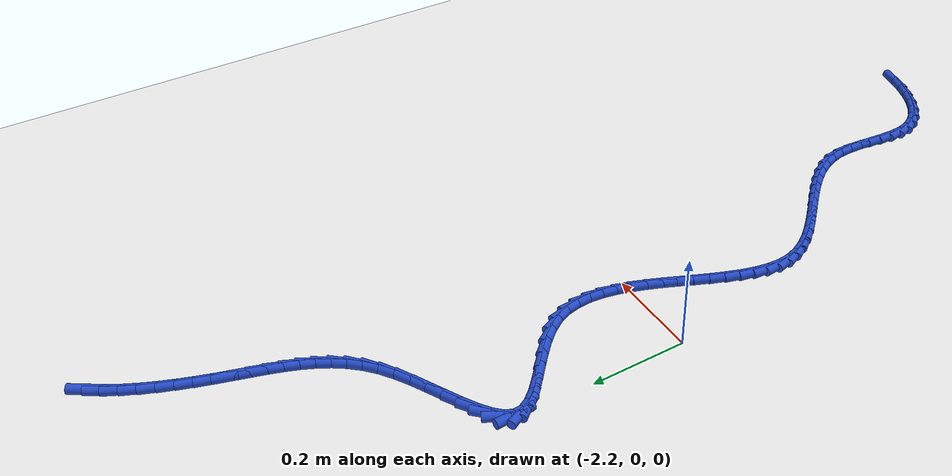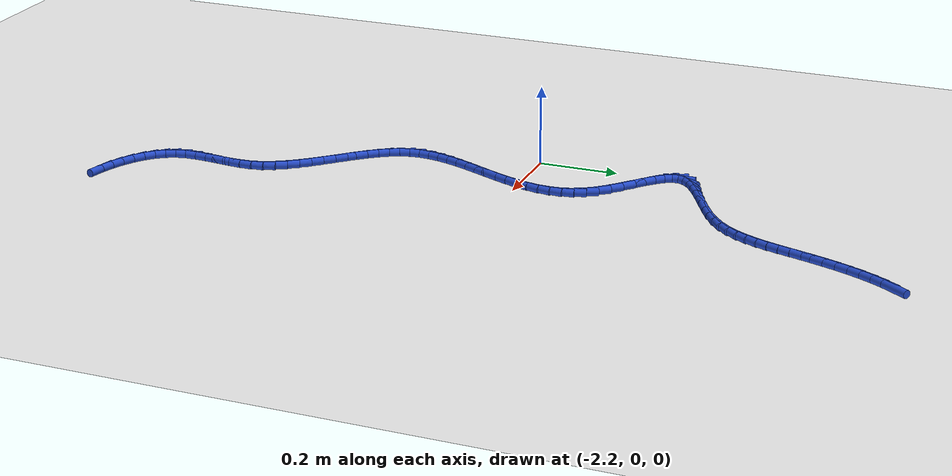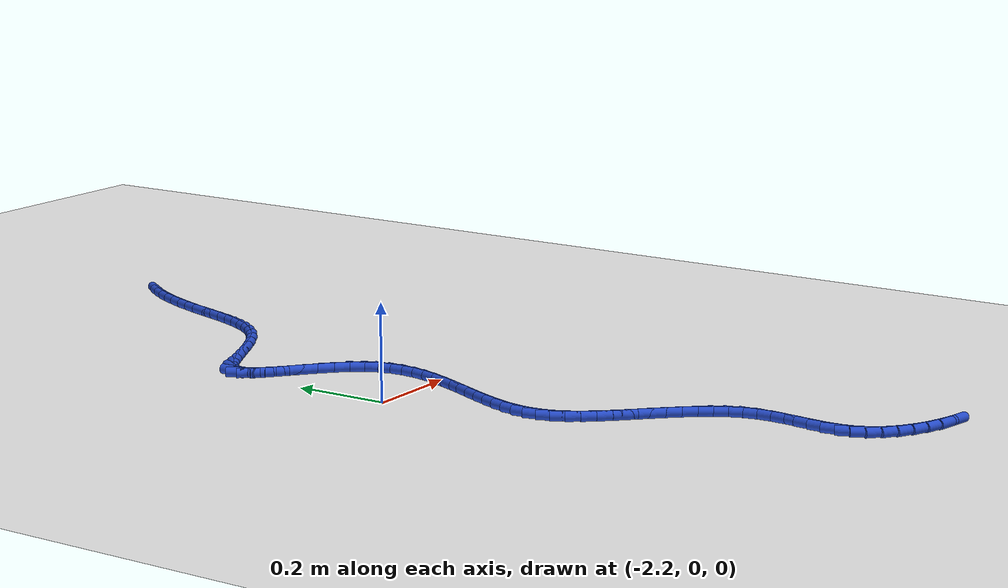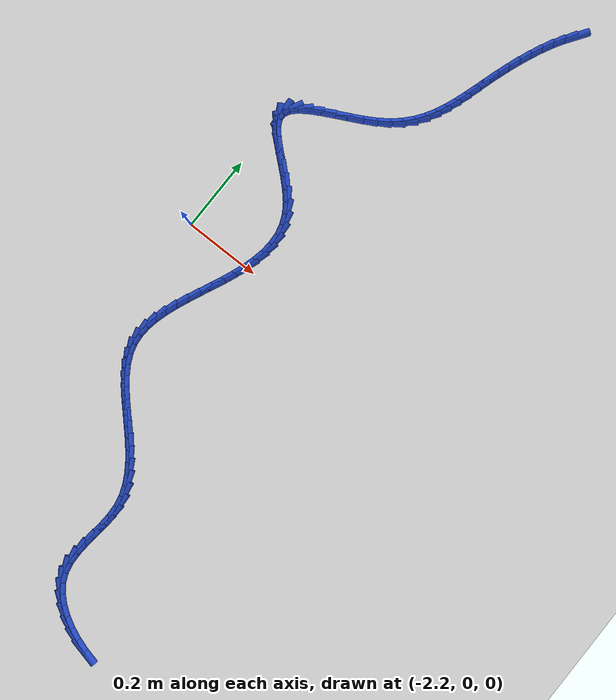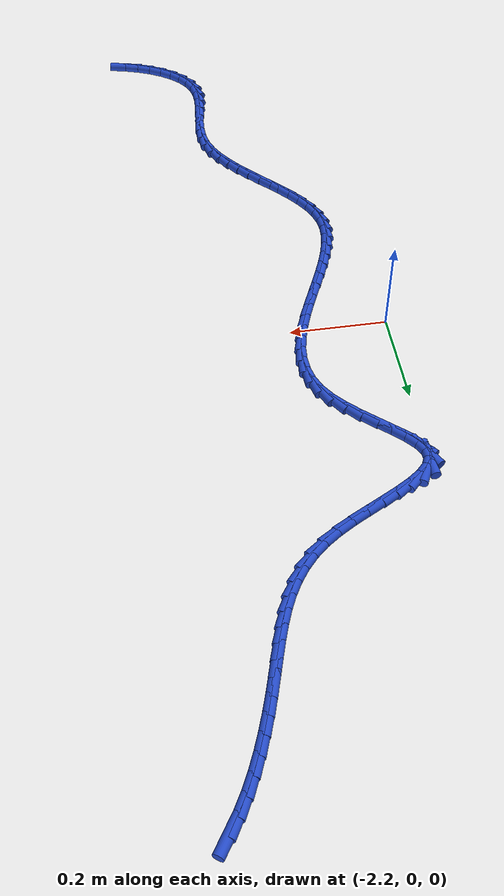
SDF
<sdf version="1.6">
 <world name="default">
  <model name="ground_plane">
   <static>1</static>
   <link name="link">
    <collision name="collision">
     <geometry><plane><normal>0 0 1</normal><size>100 100</size></plane></geometry>
     <surface><friction><ode><mu>100</mu><mu2>50</mu2></ode></friction></surface>
    </collision>
    <visual name="visual">
     <cast_shadows>0</cast_shadows>
     <geometry><plane><normal>0 0 1</normal><size>100 100</size></plane></geometry>
     <material>
      <script><uri>file://media/materials/scripts/gazebo.material</uri><name>Gazebo/WhiteGlow</name></script>
     </material>
    </visual>
   </link>
  </model>
  <model name="line">
   <link name="link_81">
    <pose>-1.7413648778442665 0.9724690442778641 0.01 0 1.57 0.9735401017300095</pose>
    <collision name="collision">
     <geometry><cylinder><radius>0.01</radius><length>0.08</length></cylinder></geometry>
    </collision>
    <visual name="visual">
     <material>
      <script><name>Gazebo/Blue</name><uri>file://media/materials/scripts/gazebo.material</uri></script>
     </material>
     <geometry><cylinder><radius>0.01</radius><length>0.08</length></cylinder></geometry>
    </visual>
   </link>
   <link name="link_82">
    <pose>-1.7582188728721633 0.9476879981299821 0.01 0 1.57 1.0437654718651337</pose>
    <collision name="collision">
     <geometry><cylinder><radius>0.01</radius><length>0.08</length></cylinder></geometry>
    </collision>
    <visual name="visual">
     <material>
      <script><name>Gazebo/Blue</name><uri>file://media/materials/scripts/gazebo.material</uri></script>
     </material>
     <geometry><cylinder><radius>0.01</radius><length>0.08</length></cylinder></geometry>
    </visual>
   </link>
   <link name="link_83">
    <pose>-1.7737831296674653 0.9209423237945145 0.01 0 1.57 1.1015954053656942</pose>
    <collision name="collision">
     <geometry><cylinder><radius>0.01</radius><length>0.08</length></cylinder></geometry>
    </collision>
    <visual name="visual">
     <material>
      <script><name>Gazebo/Blue</name><uri>file://media/materials/scripts/gazebo.material</uri></script>
     </material>
     <geometry><cylinder><radius>0.01</radius><length>0.08</length></cylinder></geometry>
    </visual>
   </link>
   <link name="link_84">
    <pose>-1.7881347236610885 0.8926332569297517 0.01 0 1.57 1.1492424028519195</pose>
    <collision name="collision">
     <geometry><cylinder><radius>0.01</radius><length>0.08</length></cylinder></geometry>
    </collision>
    <visual name="visual">
     <material>
      <script><name>Gazebo/Blue</name><uri>file://media/materials/scripts/gazebo.material</uri></script>
     </material>
     <geometry><cylinder><radius>0.01</radius><length>0.08</length></cylinder></geometry>
    </visual>
   </link>
   <link name="link_85">
    <pose>-1.8013507302839495 0.8631620331939845 0.01 0 1.57 1.188448195372894</pose>
    <collision name="collision">
     <geometry><cylinder><radius>0.01</radius><length>0.08</length></cylinder></geometry>
    </collision>
    <visual name="visual">
     <material>
      <script><name>Gazebo/Blue</name><uri>file://media/materials/scripts/gazebo.material</uri></script>
     </material>
     <geometry><cylinder><radius>0.01</radius><length>0.08</length></cylinder></geometry>
    </visual>
   </link>
   <link name="link_86">
    <pose>-1.8135082249669647 0.8329298882455042 0.01 0 1.57 1.220531891883308</pose>
    <collision name="collision">
     <geometry><cylinder><radius>0.01</radius><length>0.08</length></cylinder></geometry>
    </collision>
    <visual name="visual">
     <material>
      <script><name>Gazebo/Blue</name><uri>file://media/materials/scripts/gazebo.material</uri></script>
     </material>
     <geometry><cylinder><radius>0.01</radius><length>0.08</length></cylinder></geometry>
    </visual>
   </link>
   <link name="link_87">
    <pose>-1.8246842831410504 0.8023380577426016 0.01 0 1.57 1.2464476199409533</pose>
    <collision name="collision">
     <geometry><cylinder><radius>0.01</radius><length>0.08</length></cylinder></geometry>
    </collision>
    <visual name="visual">
     <material>
      <script><name>Gazebo/Blue</name><uri>file://media/materials/scripts/gazebo.material</uri></script>
     </material>
     <geometry><cylinder><radius>0.01</radius><length>0.08</length></cylinder></geometry>
    </visual>
   </link>
   <link name="link_88">
    <pose>-1.834955980237122 0.7717877773435671 0.01 0 1.57 1.266473317768896</pose>
    <collision name="collision">
     <geometry><cylinder><radius>0.01</radius><length>0.08</length></cylinder></geometry>
    </collision>
    <visual name="visual">
     <material>
      <script><name>Gazebo/Blue</name><uri>file://media/materials/scripts/gazebo.material</uri></script>
     </material>
     <geometry><cylinder><radius>0.01</radius><length>0.08</length></cylinder></geometry>
    </visual>
   </link>
   <link name="link_89">
    <pose>-1.844415412401863 0.7416698029418667 0.01 0 1.57 1.275091271883186</pose>
    <collision name="collision">
     <geometry><cylinder><radius>0.01</radius><length>0.08</length></cylinder></geometry>
    </collision>
    <visual name="visual">
     <material>
      <script><name>Gazebo/Blue</name><uri>file://media/materials/scripts/gazebo.material</uri></script>
     </material>
     <geometry><cylinder><radius>0.01</radius><length>0.08</length></cylinder></geometry>
    </visual>
   </link>
   <link name="link_90">
    <pose>-1.8533896562132788 0.7122109475338972 0.01 0 1.57 1.2668723736536172</pose>
    <collision name="collision">
     <geometry><cylinder><radius>0.01</radius><length>0.08</length></cylinder></geometry>
    </collision>
    <visual name="visual">
     <material>
      <script><name>Gazebo/Blue</name><uri>file://media/materials/scripts/gazebo.material</uri></script>
     </material>
     <geometry><cylinder><radius>0.01</radius><length>0.08</length></cylinder></geometry>
    </visual>
   </link>
   <link name="link_91">
    <pose>-1.862392053673922 0.6835080690676586 0.01 0 1.57 1.2405247901557017</pose>
    <collision name="collision">
     <geometry><cylinder><radius>0.01</radius><length>0.08</length></cylinder></geometry>
    </collision>
    <visual name="visual">
     <material>
      <script><name>Gazebo/Blue</name><uri>file://media/materials/scripts/gazebo.material</uri></script>
     </material>
     <geometry><cylinder><radius>0.01</radius><length>0.08</length></cylinder></geometry>
    </visual>
   </link>
   <link name="link_92">
    <pose>-1.8719410593467396 0.6556544585219484 0.01 0 1.57 1.1951155937575777</pose>
    <collision name="collision">
     <geometry><cylinder><radius>0.01</radius><length>0.08</length></cylinder></geometry>
    </collision>
    <visual name="visual">
     <material>
      <script><name>Gazebo/Blue</name><uri>file://media/materials/scripts/gazebo.material</uri></script>
     </material>
     <geometry><cylinder><radius>0.01</radius><length>0.08</length></cylinder></geometry>
    </visual>
   </link>
   <link name="link_93">
    <pose>-1.882555127794678 0.6287434068755635 0.01 0 1.57 1.1302888670565243</pose>
    <collision name="collision">
     <geometry><cylinder><radius>0.01</radius><length>0.08</length></cylinder></geometry>
    </collision>
    <visual name="visual">
     <material>
      <script><name>Gazebo/Blue</name><uri>file://media/materials/scripts/gazebo.material</uri></script>
     </material>
     <geometry><cylinder><radius>0.01</radius><length>0.08</length></cylinder></geometry>
    </visual>
   </link>
   <link name="link_94">
    <pose>-1.8947527135806819 0.6028682051073022 0.01 0 1.57 1.0468214288378574</pose>
    <collision name="collision">
     <geometry><cylinder><radius>0.01</radius><length>0.08</length></cylinder></geometry>
    </collision>
    <visual name="visual">
     <material>
      <script><name>Gazebo/Blue</name><uri>file://media/materials/scripts/gazebo.material</uri></script>
     </material>
     <geometry><cylinder><radius>0.01</radius><length>0.08</length></cylinder></geometry>
    </visual>
   </link>
   <link name="link_95">
    <pose>-1.9090522712676967 0.578122144195961 0.01 0 1.57 0.9472501901280432</pose>
    <collision name="collision">
     <geometry><cylinder><radius>0.01</radius><length>0.08</length></cylinder></geometry>
    </collision>
    <visual name="visual">
     <material>
      <script><name>Gazebo/Blue</name><uri>file://media/materials/scripts/gazebo.material</uri></script>
     </material>
     <geometry><cylinder><radius>0.01</radius><length>0.08</length></cylinder></geometry>
    </visual>
   </link>
   <link name="link_96">
    <pose>-1.9259722554186691 0.554598515120337 0.01 0 1.57 0.8361991114989781</pose>
    <collision name="collision">
     <geometry><cylinder><radius>0.01</radius><length>0.08</length></cylinder></geometry>
    </collision>
    <visual name="visual">
     <material>
      <script><name>Gazebo/Blue</name><uri>file://media/materials/scripts/gazebo.material</uri></script>
     </material>
     <geometry><cylinder><radius>0.01</radius><length>0.08</length></cylinder></geometry>
    </visual>
   </link>
   <link name="link_97">
    <pose>-1.946031120596543 0.5323906088592283 0.01 0 1.57 0.7199564821478506</pose>
    <collision name="collision">
     <geometry><cylinder><radius>0.01</radius><length>0.08</length></cylinder></geometry>
    </collision>
    <visual name="visual">
     <material>
      <script><name>Gazebo/Blue</name><uri>file://media/materials/scripts/gazebo.material</uri></script>
     </material>
     <geometry><cylinder><radius>0.01</radius><length>0.08</length></cylinder></geometry>
    </visual>
   </link>
   <link name="link_98">
    <pose>-1.9697473213642658 0.5115917163914319 0.01 0 1.57 0.6095641095739491</pose>
    <collision name="collision">
     <geometry><cylinder><radius>0.01</radius><length>0.08</length></cylinder></geometry>
    </collision>
    <visual name="visual">
     <material>
      <script><name>Gazebo/Blue</name><uri>file://media/materials/scripts/gazebo.material</uri></script>
     </material>
     <geometry><cylinder><radius>0.01</radius><length>0.08</length></cylinder></geometry>
    </visual>
   </link>
   <link name="link_99">
    <pose>-1.9974341522326966 0.4922588262908631 0.01 0 1.57 0.5321907488285472</pose>
    <collision name="collision">
     <geometry><cylinder><radius>0.01</radius><length>0.08</length></cylinder></geometry>
    </collision>
    <visual name="visual">
     <material>
      <script><name>Gazebo/Blue</name><uri>file://media/materials/scripts/gazebo.material</uri></script>
     </material>
     <geometry><cylinder><radius>0.01</radius><length>0.08</length></cylinder></geometry>
    </visual>
   </link>
   <link name="link_100">
    <pose>-2.028077534799016 0.4742140528055076 0.01 0 1.57 0.4882718856241446</pose>
    <collision name="collision">
     <geometry><cylinder><radius>0.01</radius><length>0.08</length></cylinder></geometry>
    </collision>
    <visual name="visual">
     <material>
      <script><name>Gazebo/Blue</name><uri>file://media/materials/scripts/gazebo.material</uri></script>
     </material>
     <geometry><cylinder><radius>0.01</radius><length>0.08</length></cylinder></geometry>
    </visual>
   </link>
   <link name="link_101">
    <pose>-2.0601350880598472 0.457186028754046 0.01 0 1.57 0.47160583434097475</pose>
    <collision name="collision">
     <geometry><cylinder><radius>0.01</radius><length>0.08</length></cylinder></geometry>
    </collision>
    <visual name="visual">
     <material>
      <script><name>Gazebo/Blue</name><uri>file://media/materials/scripts/gazebo.material</uri></script>
     </material>
     <geometry><cylinder><radius>0.01</radius><length>0.08</length></cylinder></geometry>
    </visual>
   </link>
   <link name="link_102">
    <pose>-2.0920630750041136 0.4409031470139992 0.01 0 1.57 0.48151824926223213</pose>
    <collision name="collision">
     <geometry><cylinder><radius>0.01</radius><length>0.08</length></cylinder></geometry>
    </collision>
    <visual name="visual">
     <material>
      <script><name>Gazebo/Blue</name><uri>file://media/materials/scripts/gazebo.material</uri></script>
     </material>
     <geometry><cylinder><radius>0.01</radius><length>0.08</length></cylinder></geometry>
    </visual>
   </link>
   <link name="link_103">
    <pose>-2.1223177586207322 0.4250938004628877 0.01 0 1.57 0.5235218755019929</pose>
    <collision name="collision">
     <geometry><cylinder><radius>0.01</radius><length>0.08</length></cylinder></geometry>
    </collision>
    <visual name="visual">
     <material>
      <script><name>Gazebo/Blue</name><uri>file://media/materials/scripts/gazebo.material</uri></script>
     </material>
     <geometry><cylinder><radius>0.01</radius><length>0.08</length></cylinder></geometry>
    </visual>
   </link>
   <link name="link_104">
    <pose>-2.1493554018986263 0.4094863819782323 0.01 0 1.57 0.6132309005447796</pose>
    <collision name="collision">
     <geometry><cylinder><radius>0.01</radius><length>0.08</length></cylinder></geometry>
    </collision>
    <visual name="visual">
     <material>
      <script><name>Gazebo/Blue</name><uri>file://media/materials/scripts/gazebo.material</uri></script>
     </material>
     <geometry><cylinder><radius>0.01</radius><length>0.08</length></cylinder></geometry>
    </visual>
   </link>
   <link name="link_105">
    <pose>-2.171632267826714 0.3938092844375543 0.01 0 1.57 0.7868370837535097</pose>
    <collision name="collision">
     <geometry><cylinder><radius>0.01</radius><length>0.08</length></cylinder></geometry>
    </collision>
    <visual name="visual">
     <material>
      <script><name>Gazebo/Blue</name><uri>file://media/materials/scripts/gazebo.material</uri></script>
     </material>
     <geometry><cylinder><radius>0.01</radius><length>0.08</length></cylinder></geometry>
    </visual>
   </link>
   <link name="link_106">
    <pose>-2.187604619393915 0.3777909007183744 0.01 0 1.57 1.116404495952191</pose>
    <collision name="collision">
     <geometry><cylinder><radius>0.01</radius><length>0.08</length></cylinder></geometry>
    </collision>
    <visual name="visual">
     <material>
      <script><name>Gazebo/Blue</name><uri>file://media/materials/scripts/gazebo.material</uri></script>
     </material>
     <geometry><cylinder><radius>0.01</radius><length>0.08</length></cylinder></geometry>
    </visual>
   </link>
   <link name="link_107">
    <pose>-2.19572871958915 0.36115962369821325 0.01 0 1.57 -1.5045925306858858</pose>
    <collision name="collision">
     <geometry><cylinder><radius>0.01</radius><length>0.08</length></cylinder></geometry>
    </collision>
    <visual name="visual">
     <material>
      <script><name>Gazebo/Blue</name><uri>file://media/materials/scripts/gazebo.material</uri></script>
     </material>
     <geometry><cylinder><radius>0.01</radius><length>0.08</length></cylinder></geometry>
    </visual>
   </link>
   <link name="link_108">
    <pose>-2.194567954228563 0.3436520323365499 0.01 0 1.57 -1.0731165108908103</pose>
    <collision name="collision">
     <geometry><cylinder><radius>0.01</radius><length>0.08</length></cylinder></geometry>
    </collision>
    <visual name="visual">
     <material>
      <script><name>Gazebo/Blue</name><uri>file://media/materials/scripts/gazebo.material</uri></script>
     </material>
     <geometry><cylinder><radius>0.01</radius><length>0.08</length></cylinder></geometry>
    </visual>
   </link>
   <link name="link_109">
    <pose>-2.184512837118739 0.32514433054363817 0.01 0 1.57 -0.8533373140581546</pose>
    <collision name="collision">
     <geometry><cylinder><radius>0.01</radius><length>0.08</length></cylinder></geometry>
    </collision>
    <visual name="visual">
     <material>
      <script><name>Gazebo/Blue</name><uri>file://media/materials/scripts/gazebo.material</uri></script>
     </material>
     <geometry><cylinder><radius>0.01</radius><length>0.08</length></cylinder></geometry>
    </visual>
   </link>
   <link name="link_110">
    <pose>-2.167484721687301 0.3056297054995672 0.01 0 1.57 -0.7499846917802826</pose>
    <collision name="collision">
     <geometry><cylinder><radius>0.01</radius><length>0.08</length></cylinder></geometry>
    </collision>
    <visual name="visual">
     <material>
      <script><name>Gazebo/Blue</name><uri>file://media/materials/scripts/gazebo.material</uri></script>
     </material>
     <geometry><cylinder><radius>0.01</radius><length>0.08</length></cylinder></geometry>
    </visual>
   </link>
   <link name="link_111">
    <pose>-2.1454522444096114 0.2851049576470152 0.01 0 1.57 -0.7097987979756916</pose>
    <collision name="collision">
     <geometry><cylinder><radius>0.01</radius><length>0.08</length></cylinder></geometry>
    </collision>
    <visual name="visual">
     <material>
      <script><name>Gazebo/Blue</name><uri>file://media/materials/scripts/gazebo.material</uri></script>
     </material>
     <geometry><cylinder><radius>0.01</radius><length>0.08</length></cylinder></geometry>
    </visual>
   </link>
   <link name="link_112">
    <pose>-2.12038404176103 0.26356688742866 0.01 0 1.57 -0.7119893796815231</pose>
    <collision name="collision">
     <geometry><cylinder><radius>0.01</radius><length>0.08</length></cylinder></geometry>
    </collision>
    <visual name="visual">
     <material>
      <script><name>Gazebo/Blue</name><uri>file://media/materials/scripts/gazebo.material</uri></script>
     </material>
     <geometry><cylinder><radius>0.01</radius><length>0.08</length></cylinder></geometry>
    </visual>
   </link>
   <link name="link_113">
    <pose>-2.0942487502169205 0.2410122952871806 0.01 0 1.57 -0.7514121482337232</pose>
    <collision name="collision">
     <geometry><cylinder><radius>0.01</radius><length>0.08</length></cylinder></geometry>
    </collision>
    <visual name="visual">
     <material>
      <script><name>Gazebo/Blue</name><uri>file://media/materials/scripts/gazebo.material</uri></script>
     </material>
     <geometry><cylinder><radius>0.01</radius><length>0.08</length></cylinder></geometry>
    </visual>
   </link>
   <link name="link_114">
    <pose>-2.0690150062526436 0.217437981665255 0.01 0 1.57 -0.8329270130890529</pose>
    <collision name="collision">
     <geometry><cylinder><radius>0.01</radius><length>0.08</length></cylinder></geometry>
    </collision>
    <visual name="visual">
     <material>
      <script><name>Gazebo/Blue</name><uri>file://media/materials/scripts/gazebo.material</uri></script>
     </material>
     <geometry><cylinder><radius>0.01</radius><length>0.08</length></cylinder></geometry>
    </visual>
   </link>
   <link name="link_115">
    <pose>-2.0466514463435606 0.19284074700556098 0.01 0 1.57 -0.9705925250164414</pose>
    <collision name="collision">
     <geometry><cylinder><radius>0.01</radius><length>0.08</length></cylinder></geometry>
    </collision>
    <visual name="visual">
     <material>
      <script><name>Gazebo/Blue</name><uri>file://media/materials/scripts/gazebo.material</uri></script>
     </material>
     <geometry><cylinder><radius>0.01</radius><length>0.08</length></cylinder></geometry>
    </visual>
   </link>
   <link name="link_116">
    <pose>-2.029114297514588 0.1672179746685947 0.01 0 1.57 -1.1573862277796763</pose>
    <collision name="collision">
     <geometry><cylinder><radius>0.01</radius><length>0.08</length></cylinder></geometry>
    </collision>
    <visual name="visual">
     <material>
      <script><name>Gazebo/Blue</name><uri>file://media/materials/scripts/gazebo.material</uri></script>
     </material>
     <geometry><cylinder><radius>0.01</radius><length>0.08</length></cylinder></geometry>
    </visual>
   </link>
   <link name="link_117">
    <pose>-2.0174416813677327 0.14061017482463525 0.01 0 1.57 -1.345333680887727</pose>
    <collision name="collision">
     <geometry><cylinder><radius>0.01</radius><length>0.08</length></cylinder></geometry>
    </collision>
    <visual name="visual">
     <material>
      <script><name>Gazebo/Blue</name><uri>file://media/materials/scripts/gazebo.material</uri></script>
     </material>
     <geometry><cylinder><radius>0.01</radius><length>0.08</length></cylinder></geometry>
    </visual>
   </link>
   <link name="link_118">
    <pose>-2.0111387348195966 0.11312986760848369 0.01 0 1.57 -1.5151133318048375</pose>
    <collision name="collision">
     <geometry><cylinder><radius>0.01</radius><length>0.08</length></cylinder></geometry>
    </collision>
    <visual name="visual">
     <material>
      <script><name>Gazebo/Blue</name><uri>file://media/materials/scripts/gazebo.material</uri></script>
     </material>
     <geometry><cylinder><radius>0.01</radius><length>0.08</length></cylinder></geometry>
    </visual>
   </link>
   <link name="link_119">
    <pose>-2.0095649846507544 0.08489641300195801 0.01 0 1.57 1.4838937151429745</pose>
    <collision name="collision">
     <geometry><cylinder><radius>0.01</radius><length>0.08</length></cylinder></geometry>
    </collision>
    <visual name="visual">
     <material>
      <script><name>Gazebo/Blue</name><uri>file://media/materials/scripts/gazebo.material</uri></script>
     </material>
     <geometry><cylinder><radius>0.01</radius><length>0.08</length></cylinder></geometry>
    </visual>
   </link>
   <link name="link_120">
    <pose>-2.012079957641783 0.05602917098687762 0.01 0 1.57 1.3705588778639692</pose>
    <collision name="collision">
     <geometry><cylinder><radius>0.01</radius><length>0.08</length></cylinder></geometry>
    </collision>
    <visual name="visual">
     <material>
      <script><name>Gazebo/Blue</name><uri>file://media/materials/scripts/gazebo.material</uri></script>
     </material>
     <geometry><cylinder><radius>0.01</radius><length>0.08</length></cylinder></geometry>
    </visual>
   </link>
   <link name="link_121">
    <pose>-2.0180431805732586 0.026647501545060764 0.01 0 1.57 1.2843389114760986</pose>
    <collision name="collision">
     <geometry><cylinder><radius>0.01</radius><length>0.08</length></cylinder></geometry>
    </collision>
    <visual name="visual">
     <material>
      <script><name>Gazebo/Blue</name><uri>file://media/materials/scripts/gazebo.material</uri></script>
     </material>
     <geometry><cylinder><radius>0.01</radius><length>0.08</length></cylinder></geometry>
    </visual>
   </link>
   <link name="link_122">
    <pose>-2.026814180225757 -0.003129235341673882 0.01 0 1.57 1.2217273047179713</pose>
    <collision name="collision">
     <geometry><cylinder><radius>0.01</radius><length>0.08</length></cylinder></geometry>
    </collision>
    <visual name="visual">
     <material>
      <script><name>Gazebo/Blue</name><uri>file://media/materials/scripts/gazebo.material</uri></script>
     </material>
     <geometry><cylinder><radius>0.01</radius><length>0.08</length></cylinder></geometry>
    </visual>
   </link>
   <link name="link_123">
    <pose>-2.037752483379854 -0.03318167969150776 0.01 0 1.57 1.1794474030797955</pose>
    <collision name="collision">
     <geometry><cylinder><radius>0.01</radius><length>0.08</length></cylinder></geometry>
    </collision>
    <visual name="visual">
     <material>
      <script><name>Gazebo/Blue</name><uri>file://media/materials/scripts/gazebo.material</uri></script>
     </material>
     <geometry><cylinder><radius>0.01</radius><length>0.08</length></cylinder></geometry>
    </visual>
   </link>
   <link name="link_124">
    <pose>-2.0502176168161257 -0.06339047152262225 0.01 0 1.57 1.1550893677543241</pose>
    <collision name="collision">
     <geometry><cylinder><radius>0.01</radius><length>0.08</length></cylinder></geometry>
    </collision>
    <visual name="visual">
     <material>
      <script><name>Gazebo/Blue</name><uri>file://media/materials/scripts/gazebo.material</uri></script>
     </material>
     <geometry><cylinder><radius>0.01</radius><length>0.08</length></cylinder></geometry>
    </visual>
   </link>
   <link name="link_125">
    <pose>-2.0635691073151494 -0.09363625085319957 0.01 0 1.57 1.1472852949574426</pose>
    <collision name="collision">
     <geometry><cylinder><radius>0.01</radius><length>0.08</length></cylinder></geometry>
    </collision>
    <visual name="visual">
     <material>
      <script><name>Gazebo/Blue</name><uri>file://media/materials/scripts/gazebo.material</uri></script>
     </material>
     <geometry><cylinder><radius>0.01</radius><length>0.08</length></cylinder></geometry>
    </visual>
   </link>
   <link name="link_126">
    <pose>-2.0771664816574984 -0.12379965770141947 0.01 0 1.57 1.1557401723366894</pose>
    <collision name="collision">
     <geometry><cylinder><radius>0.01</radius><length>0.08</length></cylinder></geometry>
    </collision>
    <visual name="visual">
     <material>
      <script><name>Gazebo/Blue</name><uri>file://media/materials/scripts/gazebo.material</uri></script>
     </material>
     <geometry><cylinder><radius>0.01</radius><length>0.08</length></cylinder></geometry>
    </visual>
   </link>
   <link name="link_127">
    <pose>-2.0903692666237514 -0.1537613320854641 0.01 0 1.57 1.18126351794216</pose>
    <collision name="collision">
     <geometry><cylinder><radius>0.01</radius><length>0.08</length></cylinder></geometry>
    </collision>
    <visual name="visual">
     <material>
      <script><name>Gazebo/Blue</name><uri>file://media/materials/scripts/gazebo.material</uri></script>
     </material>
     <geometry><cylinder><radius>0.01</radius><length>0.08</length></cylinder></geometry>
    </visual>
   </link>
   <link name="link_128">
    <pose>-2.1025369889944834 -0.18340191402351486 0.01 0 1.57 1.2258429803396411</pose>
    <collision name="collision">
     <geometry><cylinder><radius>0.01</radius><length>0.08</length></cylinder></geometry>
    </collision>
    <visual name="visual">
     <material>
      <script><name>Gazebo/Blue</name><uri>file://media/materials/scripts/gazebo.material</uri></script>
     </material>
     <geometry><cylinder><radius>0.01</radius><length>0.08</length></cylinder></geometry>
    </visual>
   </link>
   <link name="link_129">
    <pose>-2.1130291755502704 -0.21260204353375323 0.01 0 1.57 1.2927152286470092</pose>
    <collision name="collision">
     <geometry><cylinder><radius>0.01</radius><length>0.08</length></cylinder></geometry>
    </collision>
    <visual name="visual">
     <material>
      <script><name>Gazebo/Blue</name><uri>file://media/materials/scripts/gazebo.material</uri></script>
     </material>
     <geometry><cylinder><radius>0.01</radius><length>0.08</length></cylinder></geometry>
    </visual>
   </link>
   <link name="link_130">
    <pose>-2.1212053530716886 -0.24124236063436047 0.01 0 1.57 1.3862437980046305</pose>
    <collision name="collision">
     <geometry><cylinder><radius>0.01</radius><length>0.08</length></cylinder></geometry>
    </collision>
    <visual name="visual">
     <material>
      <script><name>Gazebo/Blue</name><uri>file://media/materials/scripts/gazebo.material</uri></script>
     </material>
     <geometry><cylinder><radius>0.01</radius><length>0.08</length></cylinder></geometry>
    </visual>
   </link>
   <link name="link_131">
    <pose>-2.1264250483393146 -0.26920350534351806 0.01 0 1.57 1.5111255800222176</pose>
    <collision name="collision">
     <geometry><cylinder><radius>0.01</radius><length>0.08</length></cylinder></geometry>
    </collision>
    <visual name="visual">
     <material>
      <script><name>Gazebo/Blue</name><uri>file://media/materials/scripts/gazebo.material</uri></script>
     </material>
     <geometry><cylinder><radius>0.01</radius><length>0.08</length></cylinder></geometry>
    </visual>
   </link>
   <link name="link_132">
    <pose>-2.1280477881337236 -0.29636611767940807 0.01 0 1.57 -1.471496761668637</pose>
    <collision name="collision">
     <geometry><cylinder><radius>0.01</radius><length>0.08</length></cylinder></geometry>
    </collision>
    <visual name="visual">
     <material>
      <script><name>Gazebo/Blue</name><uri>file://media/materials/scripts/gazebo.material</uri></script>
     </material>
     <geometry><cylinder><radius>0.01</radius><length>0.08</length></cylinder></geometry>
    </visual>
   </link>
   <link name="link_133">
    <pose>-2.1254330992354915 -0.32261083766021037 0.01 0 1.57 -1.289051348700481</pose>
    <collision name="collision">
     <geometry><cylinder><radius>0.01</radius><length>0.08</length></cylinder></geometry>
    </collision>
    <visual name="visual">
     <material>
      <script><name>Gazebo/Blue</name><uri>file://media/materials/scripts/gazebo.material</uri></script>
     </material>
     <geometry><cylinder><radius>0.01</radius><length>0.08</length></cylinder></geometry>
    </visual>
   </link>
   <link name="link_134">
    <pose>-2.1181250928360855 -0.3478592197748191 0.01 0 1.57 -1.1282062555390802</pose>
    <collision name="collision">
     <geometry><cylinder><radius>0.01</radius><length>0.08</length></cylinder></geometry>
    </collision>
    <visual name="visual">
     <material>
      <script><name>Gazebo/Blue</name><uri>file://media/materials/scripts/gazebo.material</uri></script>
     </material>
     <geometry><cylinder><radius>0.01</radius><length>0.08</length></cylinder></geometry>
    </visual>
   </link>
   <link name="link_135">
    <pose>-2.106572968317277 -0.37223343786061536 0.01 0 1.57 -1.0041067027618908</pose>
    <collision name="collision">
     <geometry><cylinder><radius>0.01</radius><length>0.08</length></cylinder></geometry>
    </collision>
    <visual name="visual">
     <material>
      <script><name>Gazebo/Blue</name><uri>file://media/materials/scripts/gazebo.material</uri></script>
     </material>
     <geometry><cylinder><radius>0.01</radius><length>0.08</length></cylinder></geometry>
    </visual>
   </link>
   <link name="link_136">
    <pose>-2.0915028915036067 -0.3959170573717279 0.01 0 1.57 -0.914189530016766</pose>
    <collision name="collision">
     <geometry><cylinder><radius>0.01</radius><length>0.08</length></cylinder></geometry>
    </collision>
    <visual name="visual">
     <material>
      <script><name>Gazebo/Blue</name><uri>file://media/materials/scripts/gazebo.material</uri></script>
     </material>
     <geometry><cylinder><radius>0.01</radius><length>0.08</length></cylinder></geometry>
    </visual>
   </link>
   <link name="link_137">
    <pose>-2.0736410988921414 -0.41909365942736193 0.01 0 1.57 -0.8536850870196215</pose>
    <collision name="collision">
     <geometry><cylinder><radius>0.01</radius><length>0.08</length></cylinder></geometry>
    </collision>
    <visual name="visual">
     <material>
      <script><name>Gazebo/Blue</name><uri>file://media/materials/scripts/gazebo.material</uri></script>
     </material>
     <geometry><cylinder><radius>0.01</radius><length>0.08</length></cylinder></geometry>
    </visual>
   </link>
   <link name="link_138">
    <pose>-2.053713826979949 -0.44194682514672295 0.01 0 1.57 -0.8182831103132832</pose>
    <collision name="collision">
     <geometry><cylinder><radius>0.01</radius><length>0.08</length></cylinder></geometry>
    </collision>
    <visual name="visual">
     <material>
      <script><name>Gazebo/Blue</name><uri>file://media/materials/scripts/gazebo.material</uri></script>
     </material>
     <geometry><cylinder><radius>0.01</radius><length>0.08</length></cylinder></geometry>
    </visual>
   </link>
   <link name="link_139">
    <pose>-2.0324473122640967 -0.4646601356490166 0.01 0 1.57 -0.8050547500858454</pose>
    <collision name="collision">
     <geometry><cylinder><radius>0.01</radius><length>0.08</length></cylinder></geometry>
    </collision>
    <visual name="visual">
     <material>
      <script><name>Gazebo/Blue</name><uri>file://media/materials/scripts/gazebo.material</uri></script>
     </material>
     <geometry><cylinder><radius>0.01</radius><length>0.08</length></cylinder></geometry>
    </visual>
   </link>
   <link name="link_140">
    <pose>-2.01056779124165 -0.48741717205344837 0.01 0 1.57 -0.8126101112769081</pose>
    <collision name="collision">
     <geometry><cylinder><radius>0.01</radius><length>0.08</length></cylinder></geometry>
    </collision>
    <visual name="visual">
     <material>
      <script><name>Gazebo/Blue</name><uri>file://media/materials/scripts/gazebo.material</uri></script>
     </material>
     <geometry><cylinder><radius>0.01</radius><length>0.08</length></cylinder></geometry>
    </visual>
   </link>
   <link name="link_141">
    <pose>-1.9888015004096784 -0.5104015154792229 0.01 0 1.57 -0.8410332206935421</pose>
    <collision name="collision">
     <geometry><cylinder><radius>0.01</radius><length>0.08</length></cylinder></geometry>
    </collision>
    <visual name="visual">
     <material>
      <script><name>Gazebo/Blue</name><uri>file://media/materials/scripts/gazebo.material</uri></script>
     </material>
     <geometry><cylinder><radius>0.01</radius><length>0.08</length></cylinder></geometry>
    </visual>
   </link>
   <link name="link_142">
    <pose>-1.9678746762652468 -0.5337967470455458 0.01 0 1.57 -0.8917654839579682</pose>
    <collision name="collision">
     <geometry><cylinder><radius>0.01</radius><length>0.08</length></cylinder></geometry>
    </collision>
    <visual name="visual">
     <material>
      <script><name>Gazebo/Blue</name><uri>file://media/materials/scripts/gazebo.material</uri></script>
     </material>
     <geometry><cylinder><radius>0.01</radius><length>0.08</length></cylinder></geometry>
    </visual>
   </link>
   <link name="link_143">
    <pose>-1.948513555305424 -0.5577864478716228 0.01 0 1.57 -0.9673761280598518</pose>
    <collision name="collision">
     <geometry><cylinder><radius>0.01</radius><length>0.08</length></cylinder></geometry>
    </collision>
    <visual name="visual">
     <material>
      <script><name>Gazebo/Blue</name><uri>file://media/materials/scripts/gazebo.material</uri></script>
     </material>
     <geometry><cylinder><radius>0.01</radius><length>0.08</length></cylinder></geometry>
    </visual>
   </link>
   <link name="link_144">
    <pose>-1.9314443740272762 -0.5825541990766592 0.01 0 1.57 -1.0709466234884975</pose>
    <collision name="collision">
     <geometry><cylinder><radius>0.01</radius><length>0.08</length></cylinder></geometry>
    </collision>
    <visual name="visual">
     <material>
      <script><name>Gazebo/Blue</name><uri>file://media/materials/scripts/gazebo.material</uri></script>
     </material>
     <geometry><cylinder><radius>0.01</radius><length>0.08</length></cylinder></geometry>
    </visual>
   </link>
   <link name="link_145">
    <pose>-1.9173933689278702 -0.6082835817798604 0.01 0 1.57 -1.204588500375473</pose>
    <collision name="collision">
     <geometry><cylinder><radius>0.01</radius><length>0.08</length></cylinder></geometry>
    </collision>
    <visual name="visual">
     <material>
      <script><name>Gazebo/Blue</name><uri>file://media/materials/scripts/gazebo.material</uri></script>
     </material>
     <geometry><cylinder><radius>0.01</radius><length>0.08</length></cylinder></geometry>
    </visual>
   </link>
   <link name="link_146">
    <pose>-1.9070867765042738 -0.6351581771004315 0.01 0 1.57 -1.366334542022143</pose>
    <collision name="collision">
     <geometry><cylinder><radius>0.01</radius><length>0.08</length></cylinder></geometry>
    </collision>
    <visual name="visual">
     <material>
      <script><name>Gazebo/Blue</name><uri>file://media/materials/scripts/gazebo.material</uri></script>
     </material>
     <geometry><cylinder><radius>0.01</radius><length>0.08</length></cylinder></geometry>
    </visual>
   </link>
   <link name="link_147">
    <pose>-1.9012392889845557 -0.6633579481414099 0.01 0 1.57 -1.5211949681402401</pose>
    <collision name="collision">
     <geometry><cylinder><radius>0.01</radius><length>0.08</length></cylinder></geometry>
    </collision>
    <visual name="visual">
     <material>
      <script><name>Gazebo/Blue</name><uri>file://media/materials/scripts/gazebo.material</uri></script>
     </material>
     <geometry><cylinder><radius>0.01</radius><length>0.08</length></cylinder></geometry>
    </visual>
   </link>
   <link name="link_148">
    <pose>-1.8997769454428146 -0.6928156912199954 0.01 0 1.57 1.5190101407345944</pose>
    <collision name="collision">
     <geometry><cylinder><radius>0.01</radius><length>0.08</length></cylinder></geometry>
    </collision>
    <visual name="visual">
     <material>
      <script><name>Gazebo/Blue</name><uri>file://media/materials/scripts/gazebo.material</uri></script>
     </material>
     <geometry><cylinder><radius>0.01</radius><length>0.08</length></cylinder></geometry>
    </visual>
   </link>
   <link name="link_149">
    <pose>-1.9013447251285405 -0.7230627138142022 0.01 0 1.57 1.4687787547937843</pose>
    <collision name="collision">
     <geometry><cylinder><radius>0.01</radius><length>0.08</length></cylinder></geometry>
    </collision>
    <visual name="visual">
     <material>
      <script><name>Gazebo/Blue</name><uri>file://media/materials/scripts/gazebo.material</uri></script>
     </material>
     <geometry><cylinder><radius>0.01</radius><length>0.08</length></cylinder></geometry>
    </visual>
   </link>
   <link name="link_150">
    <pose>-1.9044702570492955 -0.7535935454065861 0.01 0 1.57 1.4652513260121216</pose>
    <collision name="collision">
     <geometry><cylinder><radius>0.01</radius><length>0.08</length></cylinder></geometry>
    </collision>
    <visual name="visual">
     <material>
      <script><name>Gazebo/Blue</name><uri>file://media/materials/scripts/gazebo.material</uri></script>
     </material>
     <geometry><cylinder><radius>0.01</radius><length>0.08</length></cylinder></geometry>
    </visual>
   </link>
   <link name="link_151">
    <pose>-1.9076811702126435 -0.7839027154797035 0.01 0 1.57 1.5092178296343122</pose>
    <collision name="collision">
     <geometry><cylinder><radius>0.01</radius><length>0.08</length></cylinder></geometry>
    </collision>
    <visual name="visual">
     <material>
      <script><name>Gazebo/Blue</name><uri>file://media/materials/scripts/gazebo.material</uri></script>
     </material>
     <geometry><cylinder><radius>0.01</radius><length>0.08</length></cylinder></geometry>
    </visual>
   </link>
   <link name="link_152">
    <pose>-1.909505093626146 -0.8134847535161104 0.01 0 1.57 -1.5342884651133424</pose>
    <collision name="collision">
     <geometry><cylinder><radius>0.01</radius><length>0.08</length></cylinder></geometry>
    </collision>
    <visual name="visual">
     <material>
      <script><name>Gazebo/Blue</name><uri>file://media/materials/scripts/gazebo.material</uri></script>
     </material>
     <geometry><cylinder><radius>0.01</radius><length>0.08</length></cylinder></geometry>
    </visual>
   </link>
   <link name="link_153">
    <pose>-1.9084696562973678 -0.841834188998363 0.01 0 1.57 -1.371779063044904</pose>
    <collision name="collision">
     <geometry><cylinder><radius>0.01</radius><length>0.08</length></cylinder></geometry>
    </collision>
    <visual name="visual">
     <material>
      <script><name>Gazebo/Blue</name><uri>file://media/materials/scripts/gazebo.material</uri></script>
     </material>
     <geometry><cylinder><radius>0.01</radius><length>0.08</length></cylinder></geometry>
    </visual>
   </link>
   <link name="link_154">
    <pose>-1.9031024872338695 -0.868445551409017 0.01 0 1.57 -1.1513959085302237</pose>
    <collision name="collision">
     <geometry><cylinder><radius>0.01</radius><length>0.08</length></cylinder></geometry>
    </collision>
    <visual name="visual">
     <material>
      <script><name>Gazebo/Blue</name><uri>file://media/materials/scripts/gazebo.material</uri></script>
     </material>
     <geometry><cylinder><radius>0.01</radius><length>0.08</length></cylinder></geometry>
    </visual>
   </link>
   <link name="link_155">
    <pose>-1.892211389905 -0.8928730713747727 0.01 0 1.57 -0.9398316204588031</pose>
    <collision name="collision">
     <geometry><cylinder><radius>0.01</radius><length>0.08</length></cylinder></geometry>
    </collision>
    <visual name="visual">
     <material>
      <script><name>Gazebo/Blue</name><uri>file://media/materials/scripts/gazebo.material</uri></script>
     </material>
     <geometry><cylinder><radius>0.01</radius><length>0.08</length></cylinder></geometry>
    </visual>
   </link>
   <link name="link_156">
    <pose>-1.8760594301138829 -0.9149810749742895 0.01 0 1.57 -0.7625104818945068</pose>
    <collision name="collision">
     <geometry><cylinder><radius>0.01</radius><length>0.08</length></cylinder></geometry>
    </collision>
    <visual name="visual">
     <material>
      <script><name>Gazebo/Blue</name><uri>file://media/materials/scripts/gazebo.material</uri></script>
     </material>
     <geometry><cylinder><radius>0.01</radius><length>0.08</length></cylinder></geometry>
    </visual>
   </link>
   <link name="link_157">
    <pose>-1.8553806945750757 -0.9347342560611815 0.01 0 1.57 -0.6170950748933565</pose>
    <collision name="collision">
     <geometry><cylinder><radius>0.01</radius><length>0.08</length></cylinder></geometry>
    </collision>
    <visual name="visual">
     <material>
      <script><name>Gazebo/Blue</name><uri>file://media/materials/scripts/gazebo.material</uri></script>
     </material>
     <geometry><cylinder><radius>0.01</radius><length>0.08</length></cylinder></geometry>
    </visual>
   </link>
   <link name="link_158">
    <pose>-1.830909509712088 -0.9520973595675892 0.01 0 1.57 -0.4971544221921189</pose>
    <collision name="collision">
     <geometry><cylinder><radius>0.01</radius><length>0.08</length></cylinder></geometry>
    </collision>
    <visual name="visual">
     <material>
      <script><name>Gazebo/Blue</name><uri>file://media/materials/scripts/gazebo.material</uri></script>
     </material>
     <geometry><cylinder><radius>0.01</radius><length>0.08</length></cylinder></geometry>
    </visual>
   </link>
   <link name="link_159">
    <pose>-1.8033802019484284 -0.967035130425653 0.01 0 1.57 -0.39588634305070797</pose>
    <collision name="collision">
     <geometry><cylinder><radius>0.01</radius><length>0.08</length></cylinder></geometry>
    </collision>
    <visual name="visual">
     <material>
      <script><name>Gazebo/Blue</name><uri>file://media/materials/scripts/gazebo.material</uri></script>
     </material>
     <geometry><cylinder><radius>0.01</radius><length>0.08</length></cylinder></geometry>
    </visual>
   </link>
   <link name="link_160">
    <pose>-1.7735270977076056 -0.9795123135675129 0.01 0 1.57 -0.30738507081284433</pose>
    <collision name="collision">
     <geometry><cylinder><radius>0.01</radius><length>0.08</length></cylinder></geometry>
    </collision>
    <visual name="visual">
     <material>
      <script><name>Gazebo/Blue</name><uri>file://media/materials/scripts/gazebo.material</uri></script>
     </material>
     <geometry><cylinder><radius>0.01</radius><length>0.08</length></cylinder></geometry>
    </visual>
   </link>
   <link name="link_161">
    <pose>-1.7420845234131292 -0.989493653925309 0.01 0 1.57 -0.2267083928472384</pose>
    <collision name="collision">
     <geometry><cylinder><radius>0.01</radius><length>0.08</length></cylinder></geometry>
    </collision>
    <visual name="visual">
     <material>
      <script><name>Gazebo/Blue</name><uri>file://media/materials/scripts/gazebo.material</uri></script>
     </material>
     <geometry><cylinder><radius>0.01</radius><length>0.08</length></cylinder></geometry>
    </visual>
   </link>
  </model>
 </world>
</sdf>
